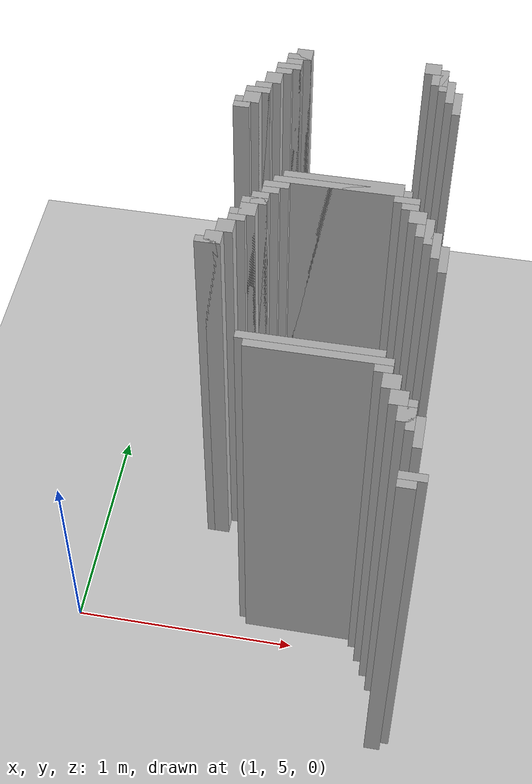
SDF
<sdf version="1.6">
 <world name="slam_world">
  <model name="ground_plane">
   <static>true</static>
   <link name="link">
    <collision name="collision">
     <geometry><plane><normal>0 0 1</normal><size>100 100</size></plane></geometry>
    </collision>
    <visual name="visual">
     <geometry><plane><normal>0 0 1</normal><size>100 100</size></plane></geometry>
     <material>
      <ambient>0.8 0.8 0.8 1</ambient>
      <diffuse>0.8 0.8 0.8 1</diffuse>
      <specular>0.8 0.8 0.8 1</specular>
     </material>
    </visual>
   </link>
  </model>
  <model name="wall_3555">
   <static>true</static>
   <pose>1.740139211136891 6.751740139211137 1.0 0 0 0</pose>
   <link name="link">
    <collision name="collision">
     <geometry><box><size>0.06960556844547564 0.06960556844547564 2.0</size></box></geometry>
    </collision>
    <visual name="visual">
     <geometry><box><size>0.06960556844547564 0.06960556844547564 2.0</size></box></geometry>
     <material><ambient>0.5 0.5 0.5 1</ambient><diffuse>0.7 0.7 0.7 1</diffuse></material>
    </visual>
   </link>
  </model>
  <model name="wall_3556">
   <static>true</static>
   <pose>2.296983758700696 6.751740139211137 1.0 0 0 0</pose>
   <link name="link">
    <collision name="collision">
     <geometry><box><size>0.06960556844547564 0.06960556844547564 2.0</size></box></geometry>
    </collision>
    <visual name="visual">
     <geometry><box><size>0.06960556844547564 0.06960556844547564 2.0</size></box></geometry>
     <material><ambient>0.5 0.5 0.5 1</ambient><diffuse>0.7 0.7 0.7 1</diffuse></material>
    </visual>
   </link>
  </model>
  <model name="wall_3568">
   <static>true</static>
   <pose>1.722737819025522 6.734338747099768 1.0 0 0 0</pose>
   <link name="link">
    <collision name="collision">
     <geometry><box><size>0.10440835266821345 0.03480278422273782 2.0</size></box></geometry>
    </collision>
    <visual name="visual">
     <geometry><box><size>0.10440835266821345 0.03480278422273782 2.0</size></box></geometry>
     <material><ambient>0.5 0.5 0.5 1</ambient><diffuse>0.7 0.7 0.7 1</diffuse></material>
    </visual>
   </link>
  </model>
  <model name="wall_3569">
   <static>true</static>
   <pose>2.3491879350348026 6.682134570765661 1.0 0 0 0</pose>
   <link name="link">
    <collision name="collision">
     <geometry><box><size>0.03480278422273782 0.13921113689095127 2.0</size></box></geometry>
    </collision>
    <visual name="visual">
     <geometry><box><size>0.03480278422273782 0.13921113689095127 2.0</size></box></geometry>
     <material><ambient>0.5 0.5 0.5 1</ambient><diffuse>0.7 0.7 0.7 1</diffuse></material>
    </visual>
   </link>
  </model>
  <model name="wall_3581">
   <static>true</static>
   <pose>1.705336426914153 6.682134570765661 1.0 0 0 0</pose>
   <link name="link">
    <collision name="collision">
     <geometry><box><size>0.06960556844547564 0.06960556844547564 2.0</size></box></geometry>
    </collision>
    <visual name="visual">
     <geometry><box><size>0.06960556844547564 0.06960556844547564 2.0</size></box></geometry>
     <material><ambient>0.5 0.5 0.5 1</ambient><diffuse>0.7 0.7 0.7 1</diffuse></material>
    </visual>
   </link>
  </model>
  <model name="wall_3582">
   <static>true</static>
   <pose>2.331786542923434 6.682134570765661 1.0 0 0 0</pose>
   <link name="link">
    <collision name="collision">
     <geometry><box><size>0.06960556844547564 0.06960556844547564 2.0</size></box></geometry>
    </collision>
    <visual name="visual">
     <geometry><box><size>0.06960556844547564 0.06960556844547564 2.0</size></box></geometry>
     <material><ambient>0.5 0.5 0.5 1</ambient><diffuse>0.7 0.7 0.7 1</diffuse></material>
    </visual>
   </link>
  </model>
  <model name="wall_3594">
   <static>true</static>
   <pose>1.6879350348027842 6.664733178654292 1.0 0 0 0</pose>
   <link name="link">
    <collision name="collision">
     <geometry><box><size>0.10440835266821345 0.03480278422273782 2.0</size></box></geometry>
    </collision>
    <visual name="visual">
     <geometry><box><size>0.10440835266821345 0.03480278422273782 2.0</size></box></geometry>
     <material><ambient>0.5 0.5 0.5 1</ambient><diffuse>0.7 0.7 0.7 1</diffuse></material>
    </visual>
   </link>
  </model>
  <model name="wall_3595">
   <static>true</static>
   <pose>2.3839907192575405 6.612529002320185 1.0 0 0 0</pose>
   <link name="link">
    <collision name="collision">
     <geometry><box><size>0.03480278422273782 0.13921113689095127 2.0</size></box></geometry>
    </collision>
    <visual name="visual">
     <geometry><box><size>0.03480278422273782 0.13921113689095127 2.0</size></box></geometry>
     <material><ambient>0.5 0.5 0.5 1</ambient><diffuse>0.7 0.7 0.7 1</diffuse></material>
    </visual>
   </link>
  </model>
  <model name="wall_3606">
   <static>true</static>
   <pose>1.6705336426914152 6.629930394431554 1.0 0 0 0</pose>
   <link name="link">
    <collision name="collision">
     <geometry><box><size>0.06960556844547564 0.03480278422273782 2.0</size></box></geometry>
    </collision>
    <visual name="visual">
     <geometry><box><size>0.06960556844547564 0.03480278422273782 2.0</size></box></geometry>
     <material><ambient>0.5 0.5 0.5 1</ambient><diffuse>0.7 0.7 0.7 1</diffuse></material>
    </visual>
   </link>
  </model>
  <model name="wall_3614">
   <static>true</static>
   <pose>1.6357308584686774 6.577726218097448 1.0 0 0 0</pose>
   <link name="link">
    <collision name="collision">
     <geometry><box><size>0.06960556844547564 0.06960556844547564 2.0</size></box></geometry>
    </collision>
    <visual name="visual">
     <geometry><box><size>0.06960556844547564 0.06960556844547564 2.0</size></box></geometry>
     <material><ambient>0.5 0.5 0.5 1</ambient><diffuse>0.7 0.7 0.7 1</diffuse></material>
    </visual>
   </link>
  </model>
  <model name="wall_3615">
   <static>true</static>
   <pose>2.4187935034802783 6.5429234338747095 1.0 0 0 0</pose>
   <link name="link">
    <collision name="collision">
     <geometry><box><size>0.03480278422273782 0.13921113689095127 2.0</size></box></geometry>
    </collision>
    <visual name="visual">
     <geometry><box><size>0.03480278422273782 0.13921113689095127 2.0</size></box></geometry>
     <material><ambient>0.5 0.5 0.5 1</ambient><diffuse>0.7 0.7 0.7 1</diffuse></material>
    </visual>
   </link>
  </model>
  <model name="wall_3627">
   <static>true</static>
   <pose>1.6009280742459395 6.508120649651972 1.0 0 0 0</pose>
   <link name="link">
    <collision name="collision">
     <geometry><box><size>0.06960556844547564 0.06960556844547564 2.0</size></box></geometry>
    </collision>
    <visual name="visual">
     <geometry><box><size>0.06960556844547564 0.06960556844547564 2.0</size></box></geometry>
     <material><ambient>0.5 0.5 0.5 1</ambient><diffuse>0.7 0.7 0.7 1</diffuse></material>
    </visual>
   </link>
  </model>
  <model name="wall_3640">
   <static>true</static>
   <pose>1.5835266821345706 6.490719257540603 1.0 0 0 0</pose>
   <link name="link">
    <collision name="collision">
     <geometry><box><size>0.10440835266821345 0.03480278422273782 2.0</size></box></geometry>
    </collision>
    <visual name="visual">
     <geometry><box><size>0.10440835266821345 0.03480278422273782 2.0</size></box></geometry>
     <material><ambient>0.5 0.5 0.5 1</ambient><diffuse>0.7 0.7 0.7 1</diffuse></material>
    </visual>
   </link>
  </model>
  <model name="wall_3652">
   <static>true</static>
   <pose>1.5661252900232019 6.438515081206496 1.0 0 0 0</pose>
   <link name="link">
    <collision name="collision">
     <geometry><box><size>0.06960556844547564 0.06960556844547564 2.0</size></box></geometry>
    </collision>
    <visual name="visual">
     <geometry><box><size>0.06960556844547564 0.06960556844547564 2.0</size></box></geometry>
     <material><ambient>0.5 0.5 0.5 1</ambient><diffuse>0.7 0.7 0.7 1</diffuse></material>
    </visual>
   </link>
  </model>
  <model name="wall_3660">
   <static>true</static>
   <pose>1.548723897911833 6.421113689095128 1.0 0 0 0</pose>
   <link name="link">
    <collision name="collision">
     <geometry><box><size>0.10440835266821345 0.03480278422273782 2.0</size></box></geometry>
    </collision>
    <visual name="visual">
     <geometry><box><size>0.10440835266821345 0.03480278422273782 2.0</size></box></geometry>
     <material><ambient>0.5 0.5 0.5 1</ambient><diffuse>0.7 0.7 0.7 1</diffuse></material>
    </visual>
   </link>
  </model>
  <model name="wall_3672">
   <static>true</static>
   <pose>1.531322505800464 6.386310904872389 1.0 0 0 0</pose>
   <link name="link">
    <collision name="collision">
     <geometry><box><size>0.06960556844547564 0.03480278422273782 2.0</size></box></geometry>
    </collision>
    <visual name="visual">
     <geometry><box><size>0.06960556844547564 0.03480278422273782 2.0</size></box></geometry>
     <material><ambient>0.5 0.5 0.5 1</ambient><diffuse>0.7 0.7 0.7 1</diffuse></material>
    </visual>
   </link>
  </model>
  <model name="wall_3788">
   <static>true</static>
   <pose>2.0185614849187936 5.986078886310905 1.0 0 0 0</pose>
   <link name="link">
    <collision name="collision">
     <geometry><box><size>0.4872389791183295 0.06960556844547564 2.0</size></box></geometry>
    </collision>
    <visual name="visual">
     <geometry><box><size>0.4872389791183295 0.06960556844547564 2.0</size></box></geometry>
     <material><ambient>0.5 0.5 0.5 1</ambient><diffuse>0.7 0.7 0.7 1</diffuse></material>
    </visual>
   </link>
  </model>
  <model name="wall_3800">
   <static>true</static>
   <pose>2.0185614849187936 5.968677494199536 1.0 0 0 0</pose>
   <link name="link">
    <collision name="collision">
     <geometry><box><size>0.5568445475638051 0.03480278422273782 2.0</size></box></geometry>
    </collision>
    <visual name="visual">
     <geometry><box><size>0.5568445475638051 0.03480278422273782 2.0</size></box></geometry>
     <material><ambient>0.5 0.5 0.5 1</ambient><diffuse>0.7 0.7 0.7 1</diffuse></material>
    </visual>
   </link>
  </model>
  <model name="wall_3811">
   <static>true</static>
   <pose>1.75754060324826 5.933874709976798 1.0 0 0 0</pose>
   <link name="link">
    <collision name="collision">
     <geometry><box><size>0.10440835266821345 0.03480278422273782 2.0</size></box></geometry>
    </collision>
    <visual name="visual">
     <geometry><box><size>0.10440835266821345 0.03480278422273782 2.0</size></box></geometry>
     <material><ambient>0.5 0.5 0.5 1</ambient><diffuse>0.7 0.7 0.7 1</diffuse></material>
    </visual>
   </link>
  </model>
  <model name="wall_3812">
   <static>true</static>
   <pose>2.279582366589327 5.933874709976798 1.0 0 0 0</pose>
   <link name="link">
    <collision name="collision">
     <geometry><box><size>0.10440835266821345 0.03480278422273782 2.0</size></box></geometry>
    </collision>
    <visual name="visual">
     <geometry><box><size>0.10440835266821345 0.03480278422273782 2.0</size></box></geometry>
     <material><ambient>0.5 0.5 0.5 1</ambient><diffuse>0.7 0.7 0.7 1</diffuse></material>
    </visual>
   </link>
  </model>
  <model name="wall_3826">
   <static>true</static>
   <pose>1.740139211136891 5.89907192575406 1.0 0 0 0</pose>
   <link name="link">
    <collision name="collision">
     <geometry><box><size>0.06960556844547564 0.03480278422273782 2.0</size></box></geometry>
    </collision>
    <visual name="visual">
     <geometry><box><size>0.06960556844547564 0.03480278422273782 2.0</size></box></geometry>
     <material><ambient>0.5 0.5 0.5 1</ambient><diffuse>0.7 0.7 0.7 1</diffuse></material>
    </visual>
   </link>
  </model>
  <model name="wall_3827">
   <static>true</static>
   <pose>2.296983758700696 5.89907192575406 1.0 0 0 0</pose>
   <link name="link">
    <collision name="collision">
     <geometry><box><size>0.06960556844547564 0.03480278422273782 2.0</size></box></geometry>
    </collision>
    <visual name="visual">
     <geometry><box><size>0.06960556844547564 0.03480278422273782 2.0</size></box></geometry>
     <material><ambient>0.5 0.5 0.5 1</ambient><diffuse>0.7 0.7 0.7 1</diffuse></material>
    </visual>
   </link>
  </model>
  <model name="wall_3840">
   <static>true</static>
   <pose>1.705336426914153 5.846867749419953 1.0 0 0 0</pose>
   <link name="link">
    <collision name="collision">
     <geometry><box><size>0.06960556844547564 0.06960556844547564 2.0</size></box></geometry>
    </collision>
    <visual name="visual">
     <geometry><box><size>0.06960556844547564 0.06960556844547564 2.0</size></box></geometry>
     <material><ambient>0.5 0.5 0.5 1</ambient><diffuse>0.7 0.7 0.7 1</diffuse></material>
    </visual>
   </link>
  </model>
  <model name="wall_3841">
   <static>true</static>
   <pose>2.331786542923434 5.846867749419953 1.0 0 0 0</pose>
   <link name="link">
    <collision name="collision">
     <geometry><box><size>0.06960556844547564 0.06960556844547564 2.0</size></box></geometry>
    </collision>
    <visual name="visual">
     <geometry><box><size>0.06960556844547564 0.06960556844547564 2.0</size></box></geometry>
     <material><ambient>0.5 0.5 0.5 1</ambient><diffuse>0.7 0.7 0.7 1</diffuse></material>
    </visual>
   </link>
  </model>
  <model name="wall_3856">
   <static>true</static>
   <pose>1.6879350348027842 5.8294663573085845 1.0 0 0 0</pose>
   <link name="link">
    <collision name="collision">
     <geometry><box><size>0.10440835266821345 0.03480278422273782 2.0</size></box></geometry>
    </collision>
    <visual name="visual">
     <geometry><box><size>0.10440835266821345 0.03480278422273782 2.0</size></box></geometry>
     <material><ambient>0.5 0.5 0.5 1</ambient><diffuse>0.7 0.7 0.7 1</diffuse></material>
    </visual>
   </link>
  </model>
  <model name="wall_3857">
   <static>true</static>
   <pose>2.3839907192575405 5.7772621809744775 1.0 0 0 0</pose>
   <link name="link">
    <collision name="collision">
     <geometry><box><size>0.03480278422273782 0.13921113689095127 2.0</size></box></geometry>
    </collision>
    <visual name="visual">
     <geometry><box><size>0.03480278422273782 0.13921113689095127 2.0</size></box></geometry>
     <material><ambient>0.5 0.5 0.5 1</ambient><diffuse>0.7 0.7 0.7 1</diffuse></material>
    </visual>
   </link>
  </model>
  <model name="wall_3872">
   <static>true</static>
   <pose>1.6705336426914152 5.7772621809744775 1.0 0 0 0</pose>
   <link name="link">
    <collision name="collision">
     <geometry><box><size>0.06960556844547564 0.06960556844547564 2.0</size></box></geometry>
    </collision>
    <visual name="visual">
     <geometry><box><size>0.06960556844547564 0.06960556844547564 2.0</size></box></geometry>
     <material><ambient>0.5 0.5 0.5 1</ambient><diffuse>0.7 0.7 0.7 1</diffuse></material>
    </visual>
   </link>
  </model>
  <model name="wall_3873">
   <static>true</static>
   <pose>2.3665893271461718 5.7772621809744775 1.0 0 0 0</pose>
   <link name="link">
    <collision name="collision">
     <geometry><box><size>0.06960556844547564 0.06960556844547564 2.0</size></box></geometry>
    </collision>
    <visual name="visual">
     <geometry><box><size>0.06960556844547564 0.06960556844547564 2.0</size></box></geometry>
     <material><ambient>0.5 0.5 0.5 1</ambient><diffuse>0.7 0.7 0.7 1</diffuse></material>
    </visual>
   </link>
  </model>
  <model name="wall_3885">
   <static>true</static>
   <pose>1.6531322505800463 5.759860788863109 1.0 0 0 0</pose>
   <link name="link">
    <collision name="collision">
     <geometry><box><size>0.10440835266821345 0.03480278422273782 2.0</size></box></geometry>
    </collision>
    <visual name="visual">
     <geometry><box><size>0.10440835266821345 0.03480278422273782 2.0</size></box></geometry>
     <material><ambient>0.5 0.5 0.5 1</ambient><diffuse>0.7 0.7 0.7 1</diffuse></material>
    </visual>
   </link>
  </model>
  <model name="wall_3886">
   <static>true</static>
   <pose>2.4187935034802783 5.707656612529002 1.0 0 0 0</pose>
   <link name="link">
    <collision name="collision">
     <geometry><box><size>0.03480278422273782 0.13921113689095127 2.0</size></box></geometry>
    </collision>
    <visual name="visual">
     <geometry><box><size>0.03480278422273782 0.13921113689095127 2.0</size></box></geometry>
     <material><ambient>0.5 0.5 0.5 1</ambient><diffuse>0.7 0.7 0.7 1</diffuse></material>
    </visual>
   </link>
  </model>
  <model name="wall_3900">
   <static>true</static>
   <pose>1.6357308584686774 5.725058004640371 1.0 0 0 0</pose>
   <link name="link">
    <collision name="collision">
     <geometry><box><size>0.06960556844547564 0.03480278422273782 2.0</size></box></geometry>
    </collision>
    <visual name="visual">
     <geometry><box><size>0.06960556844547564 0.03480278422273782 2.0</size></box></geometry>
     <material><ambient>0.5 0.5 0.5 1</ambient><diffuse>0.7 0.7 0.7 1</diffuse></material>
    </visual>
   </link>
  </model>
  <model name="wall_3909">
   <static>true</static>
   <pose>1.6009280742459395 5.672853828306264 1.0 0 0 0</pose>
   <link name="link">
    <collision name="collision">
     <geometry><box><size>0.06960556844547564 0.06960556844547564 2.0</size></box></geometry>
    </collision>
    <visual name="visual">
     <geometry><box><size>0.06960556844547564 0.06960556844547564 2.0</size></box></geometry>
     <material><ambient>0.5 0.5 0.5 1</ambient><diffuse>0.7 0.7 0.7 1</diffuse></material>
    </visual>
   </link>
  </model>
  <model name="wall_3910">
   <static>true</static>
   <pose>2.453596287703016 5.638051044083526 1.0 0 0 0</pose>
   <link name="link">
    <collision name="collision">
     <geometry><box><size>0.03480278422273782 0.13921113689095127 2.0</size></box></geometry>
    </collision>
    <visual name="visual">
     <geometry><box><size>0.03480278422273782 0.13921113689095127 2.0</size></box></geometry>
     <material><ambient>0.5 0.5 0.5 1</ambient><diffuse>0.7 0.7 0.7 1</diffuse></material>
    </visual>
   </link>
  </model>
  <model name="wall_3925">
   <static>true</static>
   <pose>1.5661252900232019 5.603248259860789 1.0 0 0 0</pose>
   <link name="link">
    <collision name="collision">
     <geometry><box><size>0.06960556844547564 0.06960556844547564 2.0</size></box></geometry>
    </collision>
    <visual name="visual">
     <geometry><box><size>0.06960556844547564 0.06960556844547564 2.0</size></box></geometry>
     <material><ambient>0.5 0.5 0.5 1</ambient><diffuse>0.7 0.7 0.7 1</diffuse></material>
    </visual>
   </link>
  </model>
  <model name="wall_3941">
   <static>true</static>
   <pose>1.548723897911833 5.58584686774942 1.0 0 0 0</pose>
   <link name="link">
    <collision name="collision">
     <geometry><box><size>0.10440835266821345 0.03480278422273782 2.0</size></box></geometry>
    </collision>
    <visual name="visual">
     <geometry><box><size>0.10440835266821345 0.03480278422273782 2.0</size></box></geometry>
     <material><ambient>0.5 0.5 0.5 1</ambient><diffuse>0.7 0.7 0.7 1</diffuse></material>
    </visual>
   </link>
  </model>
  <model name="wall_4089">
   <static>true</static>
   <pose>2.0185614849187936 5.133410672853828 1.0 0 0 0</pose>
   <link name="link">
    <collision name="collision">
     <geometry><box><size>0.5568445475638051 0.03480278422273782 2.0</size></box></geometry>
    </collision>
    <visual name="visual">
     <geometry><box><size>0.5568445475638051 0.03480278422273782 2.0</size></box></geometry>
     <material><ambient>0.5 0.5 0.5 1</ambient><diffuse>0.7 0.7 0.7 1</diffuse></material>
    </visual>
   </link>
  </model>
  <model name="wall_4099">
   <static>true</static>
   <pose>2.053364269141531 5.09860788863109 1.0 0 0 0</pose>
   <link name="link">
    <collision name="collision">
     <geometry><box><size>0.5568445475638051 0.03480278422273782 2.0</size></box></geometry>
    </collision>
    <visual name="visual">
     <geometry><box><size>0.5568445475638051 0.03480278422273782 2.0</size></box></geometry>
     <material><ambient>0.5 0.5 0.5 1</ambient><diffuse>0.7 0.7 0.7 1</diffuse></material>
    </visual>
   </link>
  </model>
  <model name="wall_4113">
   <static>true</static>
   <pose>2.296983758700696 5.0638051044083525 1.0 0 0 0</pose>
   <link name="link">
    <collision name="collision">
     <geometry><box><size>0.06960556844547564 0.03480278422273782 2.0</size></box></geometry>
    </collision>
    <visual name="visual">
     <geometry><box><size>0.06960556844547564 0.03480278422273782 2.0</size></box></geometry>
     <material><ambient>0.5 0.5 0.5 1</ambient><diffuse>0.7 0.7 0.7 1</diffuse></material>
    </visual>
   </link>
  </model>
  <model name="wall_4128">
   <static>true</static>
   <pose>2.331786542923434 5.0116009280742455 1.0 0 0 0</pose>
   <link name="link">
    <collision name="collision">
     <geometry><box><size>0.06960556844547564 0.06960556844547564 2.0</size></box></geometry>
    </collision>
    <visual name="visual">
     <geometry><box><size>0.06960556844547564 0.06960556844547564 2.0</size></box></geometry>
     <material><ambient>0.5 0.5 0.5 1</ambient><diffuse>0.7 0.7 0.7 1</diffuse></material>
    </visual>
   </link>
  </model>
  <model name="wall_4143">
   <static>true</static>
   <pose>2.3665893271461718 4.94199535962877 1.0 0 0 0</pose>
   <link name="link">
    <collision name="collision">
     <geometry><box><size>0.06960556844547564 0.06960556844547564 2.0</size></box></geometry>
    </collision>
    <visual name="visual">
     <geometry><box><size>0.06960556844547564 0.06960556844547564 2.0</size></box></geometry>
     <material><ambient>0.5 0.5 0.5 1</ambient><diffuse>0.7 0.7 0.7 1</diffuse></material>
    </visual>
   </link>
  </model>
  <model name="wall_4158">
   <static>true</static>
   <pose>2.4187935034802783 4.872389791183294 1.0 0 0 0</pose>
   <link name="link">
    <collision name="collision">
     <geometry><box><size>0.03480278422273782 0.13921113689095127 2.0</size></box></geometry>
    </collision>
    <visual name="visual">
     <geometry><box><size>0.03480278422273782 0.13921113689095127 2.0</size></box></geometry>
     <material><ambient>0.5 0.5 0.5 1</ambient><diffuse>0.7 0.7 0.7 1</diffuse></material>
    </visual>
   </link>
  </model>
  <model name="wall_4173">
   <static>true</static>
   <pose>2.4013921113689096 4.872389791183294 1.0 0 0 0</pose>
   <link name="link">
    <collision name="collision">
     <geometry><box><size>0.06960556844547564 0.06960556844547564 2.0</size></box></geometry>
    </collision>
    <visual name="visual">
     <geometry><box><size>0.06960556844547564 0.06960556844547564 2.0</size></box></geometry>
     <material><ambient>0.5 0.5 0.5 1</ambient><diffuse>0.7 0.7 0.7 1</diffuse></material>
    </visual>
   </link>
  </model>
  <model name="wall_4183">
   <static>true</static>
   <pose>2.453596287703016 4.802784222737819 1.0 0 0 0</pose>
   <link name="link">
    <collision name="collision">
     <geometry><box><size>0.03480278422273782 0.13921113689095127 2.0</size></box></geometry>
    </collision>
    <visual name="visual">
     <geometry><box><size>0.03480278422273782 0.13921113689095127 2.0</size></box></geometry>
     <material><ambient>0.5 0.5 0.5 1</ambient><diffuse>0.7 0.7 0.7 1</diffuse></material>
    </visual>
   </link>
  </model>
  <model name="wall_4266">
   <static>true</static>
   <pose>2.453596287703016 4.611368909512761 1.0 0 0 0</pose>
   <link name="link">
    <collision name="collision">
     <geometry><box><size>0.10440835266821345 0.03480278422273782 2.0</size></box></geometry>
    </collision>
    <visual name="visual">
     <geometry><box><size>0.10440835266821345 0.03480278422273782 2.0</size></box></geometry>
     <material><ambient>0.5 0.5 0.5 1</ambient><diffuse>0.7 0.7 0.7 1</diffuse></material>
    </visual>
   </link>
  </model>
  <model name="wall_4276">
   <static>true</static>
   <pose>2.436194895591647 4.576566125290023 1.0 0 0 0</pose>
   <link name="link">
    <collision name="collision">
     <geometry><box><size>0.06960556844547564 0.03480278422273782 2.0</size></box></geometry>
    </collision>
    <visual name="visual">
     <geometry><box><size>0.06960556844547564 0.03480278422273782 2.0</size></box></geometry>
     <material><ambient>0.5 0.5 0.5 1</ambient><diffuse>0.7 0.7 0.7 1</diffuse></material>
    </visual>
   </link>
  </model>
 </world>
</sdf>
